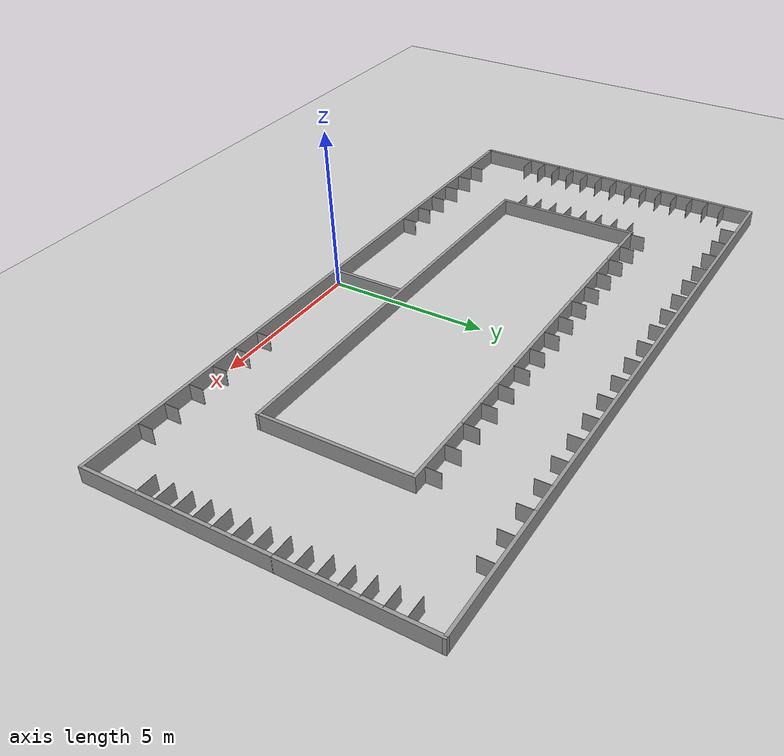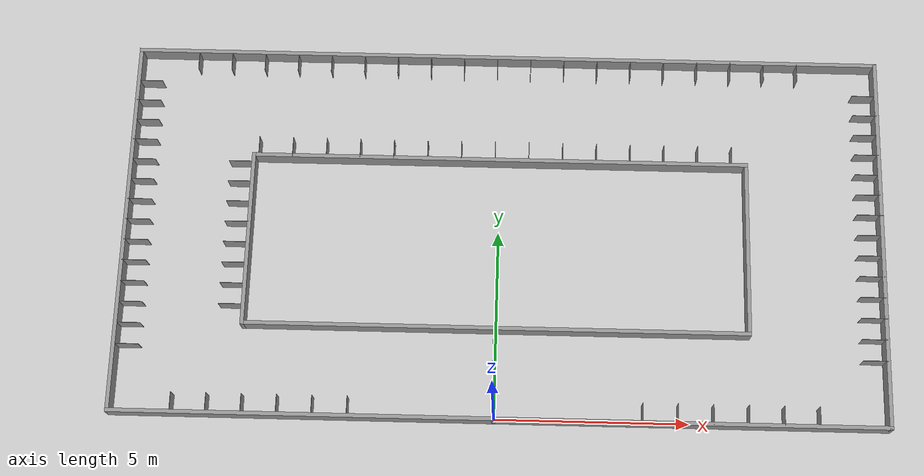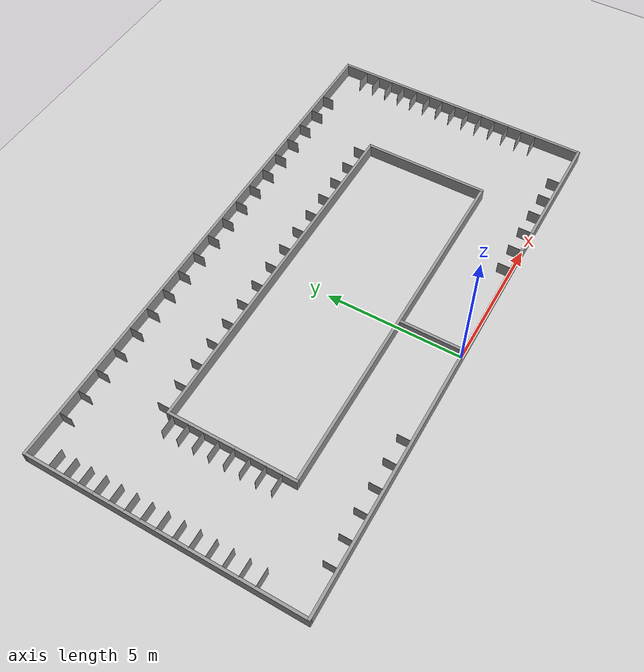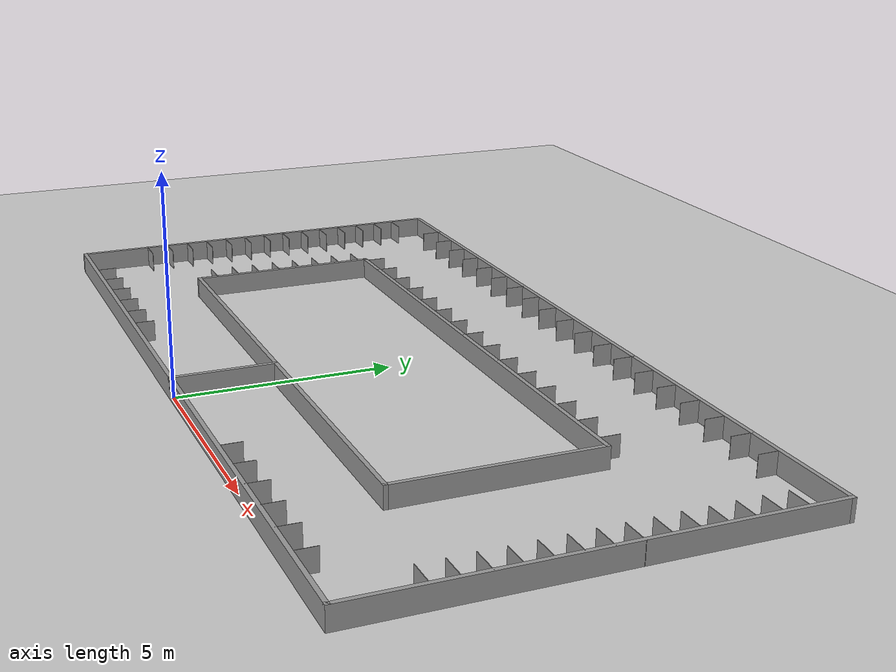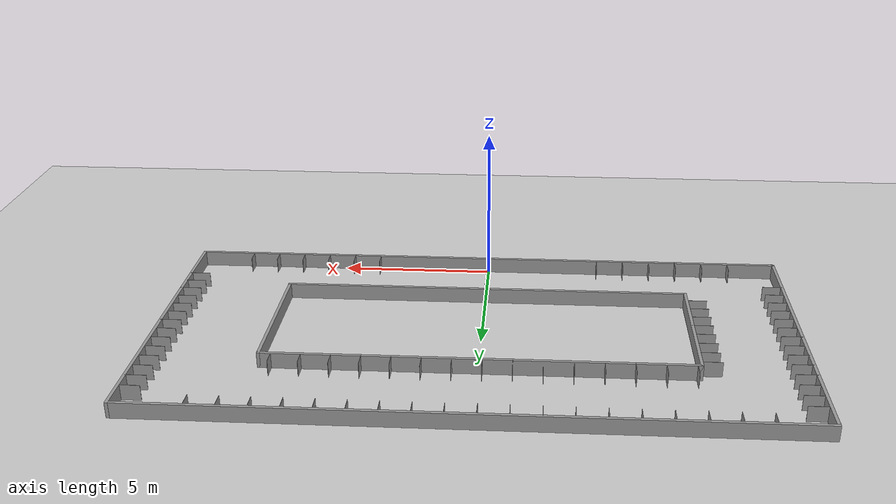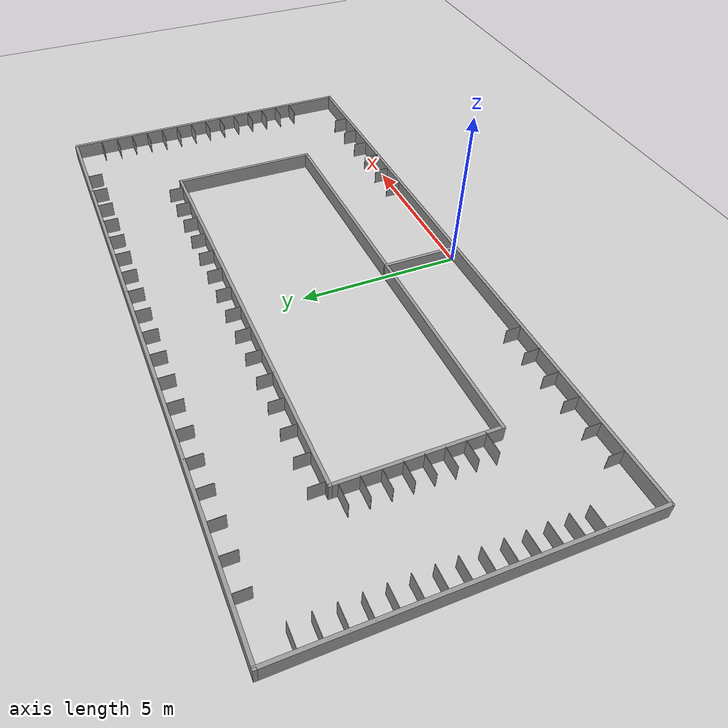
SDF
<sdf version="1.6">
 <world name="default">
  <light name="sun" type="directional">
   <pose>0 0 10 0 -0 0</pose>
   <diffuse>0.8 0.8 0.8 1</diffuse>
   <specular>0.2 0.2 0.2 1</specular>
   <attenuation>
    <range>1000</range>
    <constant>0.9</constant>
    <linear>0.01</linear>
    <quadratic>0.001</quadratic>
   </attenuation>
   <direction>-0.5 0.1 -0.9</direction>
  </light>
  <model name="ground_plane">
   <static>1</static>
   <link name="link">
    <collision name="collision">
     <geometry><plane><normal>0 0 1</normal><size>100 100</size></plane></geometry>
     <surface><friction><ode><mu>100</mu><mu2>50</mu2></ode></friction></surface>
    </collision>
    <visual name="visual">
     <cast_shadows>0</cast_shadows>
     <geometry><plane><normal>0 0 1</normal><size>100 100</size></plane></geometry>
     <material>
      <script><uri>file://media/materials/scripts/gazebo.material</uri><name>Gazebo/Grey</name></script>
     </material>
    </visual>
   </link>
  </model>
  <gravity>0 0 -9.8</gravity>
  <magnetic_field>6e-06 2.3e-05 -4.2e-05</magnetic_field>
  <atmosphere type="adiabatic"/>
  <physics name="default_physics" default="0" type="ode">
   <max_step_size>0.001</max_step_size>
   <real_time_factor>1</real_time_factor>
   <real_time_update_rate>1000</real_time_update_rate>
  </physics>
  <scene><ambient>0.4 0.4 0.4 1</ambient><background>0.7 0.7 0.7 1</background><shadows>1</shadows></scene>
  <spherical_coordinates>
   <surface_model>EARTH_WGS84</surface_model>
   <latitude_deg>0</latitude_deg>
   <longitude_deg>0</longitude_deg>
   <elevation>0</elevation>
   <heading_deg>0</heading_deg>
  </spherical_coordinates>
  <model name="parking_space_half_build">
   <pose>0.130257 4.90018 -0 0 -0 0</pose>
   <link name="Wall_0">
    <collision name="Wall_0_Collision">
     <geometry><box><size>20 0.1 0.5</size></box></geometry>
     <pose>0 0 0.25 0 -0 0</pose>
    </collision>
    <visual name="Wall_0_Visual">
     <pose>0 0 0.25 0 -0 0</pose>
     <geometry><box><size>20 0.1 0.5</size></box></geometry>
     <material>
      <script><uri>file://media/materials/scripts/gazebo.material</uri><name>Gazebo/Grey</name></script>
      <ambient>1 1 1 1</ambient>
     </material>
     <meta><layer>0</layer></meta>
    </visual>
    <pose>-0.0005 -4.95 0 0 -0 0</pose>
   </link>
   <link name="Wall_10">
    <collision name="Wall_10_Collision">
     <geometry><box><size>0.46 0.01 0.5</size></box></geometry>
     <pose>0 0 0.25 0 -0 0</pose>
    </collision>
    <visual name="Wall_10_Visual">
     <pose>0 0 0.25 0 -0 0</pose>
     <geometry><box><size>0.46 0.01 0.5</size></box></geometry>
     <material>
      <script><uri>file://media/materials/scripts/gazebo.material</uri><name>Gazebo/Grey</name></script>
      <ambient>1 1 1 1</ambient>
     </material>
     <meta><layer>0</layer></meta>
    </visual>
    <pose>-6.5665 4.675 0 0 -0 -1.5708</pose>
   </link>
   <link name="Wall_100">
    <collision name="Wall_100_Collision">
     <geometry><box><size>0.654 0.01 0.5</size></box></geometry>
     <pose>0 0 0.25 0 -0 0</pose>
    </collision>
    <visual name="Wall_100_Visual">
     <pose>0 0 0.25 0 -0 0</pose>
     <geometry><box><size>0.654 0.01 0.5</size></box></geometry>
     <material>
      <script><uri>file://media/materials/scripts/gazebo.material</uri><name>Gazebo/Grey</name></script>
      <ambient>1 1 1 1</ambient>
     </material>
     <meta><layer>0</layer></meta>
    </visual>
    <pose>-7.0065 -0.426 0 0 -0 3.14159</pose>
   </link>
   <link name="Wall_102">
    <collision name="Wall_102_Collision">
     <geometry><box><size>0.644 0.01 0.5</size></box></geometry>
     <pose>0 0 0.25 0 -0 0</pose>
    </collision>
    <visual name="Wall_102_Visual">
     <pose>0 0 0.25 0 -0 0</pose>
     <geometry><box><size>0.644 0.01 0.5</size></box></geometry>
     <material>
      <script><uri>file://media/materials/scripts/gazebo.material</uri><name>Gazebo/Grey</name></script>
      <ambient>1 1 1 1</ambient>
     </material>
     <meta><layer>0</layer></meta>
    </visual>
    <pose>-7.0115 -0.986 0 0 -0 3.14159</pose>
   </link>
   <link name="Wall_104">
    <collision name="Wall_104_Collision">
     <geometry><box><size>0.638 0.01 0.5</size></box></geometry>
     <pose>0 0 0.25 0 -0 0</pose>
    </collision>
    <visual name="Wall_104_Visual">
     <pose>0 0 0.25 0 -0 0</pose>
     <geometry><box><size>0.638 0.01 0.5</size></box></geometry>
     <material>
      <script><uri>file://media/materials/scripts/gazebo.material</uri><name>Gazebo/Grey</name></script>
      <ambient>1 1 1 1</ambient>
     </material>
     <meta><layer>0</layer></meta>
    </visual>
    <pose>-7.0145 -1.546 0 0 -0 3.14159</pose>
   </link>
   <link name="Wall_106">
    <collision name="Wall_106_Collision">
     <geometry><box><size>0.654 0.01 0.5</size></box></geometry>
     <pose>0 0 0.25 0 -0 0</pose>
    </collision>
    <visual name="Wall_106_Visual">
     <pose>0 0 0.25 0 -0 0</pose>
     <geometry><box><size>0.654 0.01 0.5</size></box></geometry>
     <material>
      <script><uri>file://media/materials/scripts/gazebo.material</uri><name>Gazebo/Grey</name></script>
      <ambient>1 1 1 1</ambient>
     </material>
     <meta><layer>0</layer></meta>
    </visual>
    <pose>-7.0065 -2.106 0 0 -0 3.14159</pose>
   </link>
   <link name="Wall_109">
    <collision name="Wall_109_Collision">
     <geometry><box><size>0.46 0.01 0.5</size></box></geometry>
     <pose>0 0 0.25 0 -0 0</pose>
    </collision>
    <visual name="Wall_109_Visual">
     <pose>0 0 0.25 0 -0 0</pose>
     <geometry><box><size>0.46 0.01 0.5</size></box></geometry>
     <material>
      <script><uri>file://media/materials/scripts/gazebo.material</uri><name>Gazebo/Grey</name></script>
      <ambient>1 1 1 1</ambient>
     </material>
     <meta><layer>0</layer></meta>
    </visual>
    <pose>-6.5665 2.285 0 0 -0 1.5708</pose>
   </link>
   <link name="Wall_14">
    <collision name="Wall_14_Collision">
     <geometry><box><size>4.7 0.1 0.5</size></box></geometry>
     <pose>0 0 0.25 0 -0 0</pose>
    </collision>
    <visual name="Wall_14_Visual">
     <pose>0 0 0.25 0 -0 0</pose>
     <geometry><box><size>4.7 0.1 0.5</size></box></geometry>
     <material>
      <script><uri>file://media/materials/scripts/gazebo.material</uri><name>Gazebo/Grey</name></script>
      <ambient>1 1 1 1</ambient>
     </material>
     <meta><layer>0</layer></meta>
    </visual>
    <pose>-6.6885 -0.29 0 0 -0 -1.5708</pose>
   </link>
   <link name="Wall_144">
    <collision name="Wall_144_Collision">
     <geometry><box><size>0.544 0.01 0.5</size></box></geometry>
     <pose>0 0 0.25 0 -0 0</pose>
    </collision>
    <visual name="Wall_144_Visual">
     <pose>0 0 0.25 0 -0 0</pose>
     <geometry><box><size>0.544 0.01 0.5</size></box></geometry>
     <material>
      <script><uri>file://media/materials/scripts/gazebo.material</uri><name>Gazebo/Grey</name></script>
      <ambient>1 1 1 1</ambient>
     </material>
     <meta><layer>0</layer></meta>
    </visual>
    <pose>-5.6665 2.243 0 0 -0 1.5708</pose>
   </link>
   <link name="Wall_146">
    <collision name="Wall_146_Collision">
     <geometry><box><size>0.511 0.01 0.5</size></box></geometry>
     <pose>0 0 0.25 0 -0 0</pose>
    </collision>
    <visual name="Wall_146_Visual">
     <pose>0 0 0.25 0 -0 0</pose>
     <geometry><box><size>0.511 0.01 0.5</size></box></geometry>
     <material>
      <script><uri>file://media/materials/scripts/gazebo.material</uri><name>Gazebo/Grey</name></script>
      <ambient>1 1 1 1</ambient>
     </material>
     <meta><layer>0</layer></meta>
    </visual>
    <pose>-4.7665 2.2595 0 0 -0 1.5708</pose>
   </link>
   <link name="Wall_148">
    <collision name="Wall_148_Collision">
     <geometry><box><size>0.517 0.01 0.5</size></box></geometry>
     <pose>0 0 0.25 0 -0 0</pose>
    </collision>
    <visual name="Wall_148_Visual">
     <pose>0 0 0.25 0 -0 0</pose>
     <geometry><box><size>0.517 0.01 0.5</size></box></geometry>
     <material>
      <script><uri>file://media/materials/scripts/gazebo.material</uri><name>Gazebo/Grey</name></script>
      <ambient>1 1 1 1</ambient>
     </material>
     <meta><layer>0</layer></meta>
    </visual>
    <pose>-3.8665 2.2565 0 0 -0 1.5708</pose>
   </link>
   <link name="Wall_150">
    <collision name="Wall_150_Collision">
     <geometry><box><size>0.511 0.01 0.5</size></box></geometry>
     <pose>0 0 0.25 0 -0 0</pose>
    </collision>
    <visual name="Wall_150_Visual">
     <pose>0 0 0.25 0 -0 0</pose>
     <geometry><box><size>0.511 0.01 0.5</size></box></geometry>
     <material>
      <script><uri>file://media/materials/scripts/gazebo.material</uri><name>Gazebo/Grey</name></script>
      <ambient>1 1 1 1</ambient>
     </material>
     <meta><layer>0</layer></meta>
    </visual>
    <pose>-2.9665 2.2595 0 0 -0 1.5708</pose>
   </link>
   <link name="Wall_152">
    <collision name="Wall_152_Collision">
     <geometry><box><size>0.504 0.01 0.5</size></box></geometry>
     <pose>0 0 0.25 0 -0 0</pose>
    </collision>
    <visual name="Wall_152_Visual">
     <pose>0 0 0.25 0 -0 0</pose>
     <geometry><box><size>0.504 0.01 0.5</size></box></geometry>
     <material>
      <script><uri>file://media/materials/scripts/gazebo.material</uri><name>Gazebo/Grey</name></script>
      <ambient>1 1 1 1</ambient>
     </material>
     <meta><layer>0</layer></meta>
    </visual>
    <pose>-2.0665 2.263 0 0 -0 1.5708</pose>
   </link>
   <link name="Wall_154">
    <collision name="Wall_154_Collision">
     <geometry><box><size>0.497 0.01 0.5</size></box></geometry>
     <pose>0 0 0.25 0 -0 0</pose>
    </collision>
    <visual name="Wall_154_Visual">
     <pose>0 0 0.25 0 -0 0</pose>
     <geometry><box><size>0.497 0.01 0.5</size></box></geometry>
     <material>
      <script><uri>file://media/materials/scripts/gazebo.material</uri><name>Gazebo/Grey</name></script>
      <ambient>1 1 1 1</ambient>
     </material>
     <meta><layer>0</layer></meta>
    </visual>
    <pose>-1.1665 2.2665 0 0 -0 1.5708</pose>
   </link>
   <link name="Wall_156">
    <collision name="Wall_156_Collision">
     <geometry><box><size>0.501 0.01 0.5</size></box></geometry>
     <pose>0 0 0.25 0 -0 0</pose>
    </collision>
    <visual name="Wall_156_Visual">
     <pose>0 0 0.25 0 -0 0</pose>
     <geometry><box><size>0.501 0.01 0.5</size></box></geometry>
     <material>
      <script><uri>file://media/materials/scripts/gazebo.material</uri><name>Gazebo/Grey</name></script>
      <ambient>1 1 1 1</ambient>
     </material>
     <meta><layer>0</layer></meta>
    </visual>
    <pose>-0.2665 2.2645 0 0 -0 1.5708</pose>
   </link>
   <link name="Wall_158">
    <collision name="Wall_158_Collision">
     <geometry><box><size>0.484 0.01 0.5</size></box></geometry>
     <pose>0 0 0.25 0 -0 0</pose>
    </collision>
    <visual name="Wall_158_Visual">
     <pose>0 0 0.25 0 -0 0</pose>
     <geometry><box><size>0.484 0.01 0.5</size></box></geometry>
     <material>
      <script><uri>file://media/materials/scripts/gazebo.material</uri><name>Gazebo/Grey</name></script>
      <ambient>1 1 1 1</ambient>
     </material>
     <meta><layer>0</layer></meta>
    </visual>
    <pose>0.6335 2.273 0 0 -0 1.5708</pose>
   </link>
   <link name="Wall_16">
    <collision name="Wall_16_Collision">
     <geometry><box><size>13.2 0.1 0.5</size></box></geometry>
     <pose>0 0 0.25 0 -0 0</pose>
    </collision>
    <visual name="Wall_16_Visual">
     <pose>0 0 0.25 0 -0 0</pose>
     <geometry><box><size>13.2 0.1 0.5</size></box></geometry>
     <material>
      <script><uri>file://media/materials/scripts/gazebo.material</uri><name>Gazebo/Grey</name></script>
      <ambient>1 1 1 1</ambient>
     </material>
     <meta><layer>0</layer></meta>
    </visual>
    <pose>-0.1385 2.01 0 0 -0 0</pose>
   </link>
   <link name="Wall_160">
    <collision name="Wall_160_Collision">
     <geometry><box><size>0.497 0.01 0.5</size></box></geometry>
     <pose>0 0 0.25 0 -0 0</pose>
    </collision>
    <visual name="Wall_160_Visual">
     <pose>0 0 0.25 0 -0 0</pose>
     <geometry><box><size>0.497 0.01 0.5</size></box></geometry>
     <material>
      <script><uri>file://media/materials/scripts/gazebo.material</uri><name>Gazebo/Grey</name></script>
      <ambient>1 1 1 1</ambient>
     </material>
     <meta><layer>0</layer></meta>
    </visual>
    <pose>1.5335 2.2665 0 0 -0 1.5708</pose>
   </link>
   <link name="Wall_162">
    <collision name="Wall_162_Collision">
     <geometry><box><size>0.517011 0.01 0.5</size></box></geometry>
     <pose>0 0 0.25 0 -0 0</pose>
    </collision>
    <visual name="Wall_162_Visual">
     <pose>0 0 0.25 0 -0 0</pose>
     <geometry><box><size>0.517011 0.01 0.5</size></box></geometry>
     <material>
      <script><uri>file://media/materials/scripts/gazebo.material</uri><name>Gazebo/Grey</name></script>
      <ambient>1 1 1 1</ambient>
     </material>
     <meta><layer>0</layer></meta>
    </visual>
    <pose>2.4335 2.2565 0 0 -0 1.5708</pose>
   </link>
   <link name="Wall_164">
    <collision name="Wall_164_Collision">
     <geometry><box><size>0.53 0.01 0.5</size></box></geometry>
     <pose>0 0 0.25 0 -0 0</pose>
    </collision>
    <visual name="Wall_164_Visual">
     <pose>0 0 0.25 0 -0 0</pose>
     <geometry><box><size>0.53 0.01 0.5</size></box></geometry>
     <material>
      <script><uri>file://media/materials/scripts/gazebo.material</uri><name>Gazebo/Grey</name></script>
      <ambient>1 1 1 1</ambient>
     </material>
     <meta><layer>0</layer></meta>
    </visual>
    <pose>3.3335 2.25 0 0 -0 1.5708</pose>
   </link>
   <link name="Wall_166">
    <collision name="Wall_166_Collision">
     <geometry><box><size>0.524 0.01 0.5</size></box></geometry>
     <pose>0 0 0.25 0 -0 0</pose>
    </collision>
    <visual name="Wall_166_Visual">
     <pose>0 0 0.25 0 -0 0</pose>
     <geometry><box><size>0.524 0.01 0.5</size></box></geometry>
     <material>
      <script><uri>file://media/materials/scripts/gazebo.material</uri><name>Gazebo/Grey</name></script>
      <ambient>1 1 1 1</ambient>
     </material>
     <meta><layer>0</layer></meta>
    </visual>
    <pose>4.2335 2.253 0 0 -0 1.5708</pose>
   </link>
   <link name="Wall_168">
    <collision name="Wall_168_Collision">
     <geometry><box><size>0.53 0.01 0.5</size></box></geometry>
     <pose>0 0 0.25 0 -0 0</pose>
    </collision>
    <visual name="Wall_168_Visual">
     <pose>0 0 0.25 0 -0 0</pose>
     <geometry><box><size>0.53 0.01 0.5</size></box></geometry>
     <material>
      <script><uri>file://media/materials/scripts/gazebo.material</uri><name>Gazebo/Grey</name></script>
      <ambient>1 1 1 1</ambient>
     </material>
     <meta><layer>0</layer></meta>
    </visual>
    <pose>5.1335 2.25 0 0 -0 1.5708</pose>
   </link>
   <link name="Wall_17">
    <collision name="Wall_17_Collision">
     <geometry><box><size>4.7 0.1 0.5</size></box></geometry>
     <pose>0 0 0.25 0 -0 0</pose>
    </collision>
    <visual name="Wall_17_Visual">
     <pose>0 0 0.25 0 -0 0</pose>
     <geometry><box><size>4.7 0.1 0.5</size></box></geometry>
     <material>
      <script><uri>file://media/materials/scripts/gazebo.material</uri><name>Gazebo/Grey</name></script>
      <ambient>1 1 1 1</ambient>
     </material>
     <meta><layer>0</layer></meta>
    </visual>
    <pose>6.4115 -0.29 0 0 -0 -1.5708</pose>
   </link>
   <link name="Wall_170">
    <collision name="Wall_170_Collision">
     <geometry><box><size>0.491 0.01 0.5</size></box></geometry>
     <pose>0 0 0.25 0 -0 0</pose>
    </collision>
    <visual name="Wall_170_Visual">
     <pose>0 0 0.25 0 -0 0</pose>
     <geometry><box><size>0.491 0.01 0.5</size></box></geometry>
     <material>
      <script><uri>file://media/materials/scripts/gazebo.material</uri><name>Gazebo/Grey</name></script>
      <ambient>1 1 1 1</ambient>
     </material>
     <meta><layer>0</layer></meta>
    </visual>
    <pose>6.0335 2.2695 0 0 -0 1.5708</pose>
   </link>
   <link name="Wall_18">
    <collision name="Wall_18_Collision">
     <geometry><box><size>13.2 0.1 0.5</size></box></geometry>
     <pose>0 0 0.25 0 -0 0</pose>
    </collision>
    <visual name="Wall_18_Visual">
     <pose>0 0 0.25 0 -0 0</pose>
     <geometry><box><size>13.2 0.1 0.5</size></box></geometry>
     <material>
      <script><uri>file://media/materials/scripts/gazebo.material</uri><name>Gazebo/Grey</name></script>
      <ambient>1 1 1 1</ambient>
     </material>
     <meta><layer>0</layer></meta>
    </visual>
    <pose>-0.1385 -2.59 0 0 -0 3.14159</pose>
   </link>
   <link name="Wall_2">
    <collision name="Wall_2_Collision">
     <geometry><box><size>10 0.1 0.5</size></box></geometry>
     <pose>0 0 0.25 0 -0 0</pose>
    </collision>
    <visual name="Wall_2_Visual">
     <pose>0 0 0.25 0 -0 0</pose>
     <geometry><box><size>10 0.1 0.5</size></box></geometry>
     <material>
      <script><uri>file://media/materials/scripts/gazebo.material</uri><name>Gazebo/Grey</name></script>
      <ambient>1 1 1 1</ambient>
     </material>
     <meta><layer>0</layer></meta>
    </visual>
    <pose>9.9495 0 0 0 -0 1.5708</pose>
   </link>
   <link name="Wall_202">
    <collision name="Wall_202_Collision">
     <geometry><box><size>0.498 0.01 0.5</size></box></geometry>
     <pose>0 0 0.25 0 -0 0</pose>
    </collision>
    <visual name="Wall_202_Visual">
     <pose>0 0 0.25 0 -0 0</pose>
     <geometry><box><size>0.498 0.01 0.5</size></box></geometry>
     <material>
      <script><uri>file://media/materials/scripts/gazebo.material</uri><name>Gazebo/Grey</name></script>
      <ambient>1 1 1 1</ambient>
     </material>
     <meta><layer>0</layer></meta>
    </visual>
    <pose>-5.6665 4.694 0 0 -0 -1.5708</pose>
   </link>
   <link name="Wall_204">
    <collision name="Wall_204_Collision">
     <geometry><box><size>0.508 0.01 0.5</size></box></geometry>
     <pose>0 0 0.25 0 -0 0</pose>
    </collision>
    <visual name="Wall_204_Visual">
     <pose>0 0 0.25 0 -0 0</pose>
     <geometry><box><size>0.508 0.01 0.5</size></box></geometry>
     <material>
      <script><uri>file://media/materials/scripts/gazebo.material</uri><name>Gazebo/Grey</name></script>
      <ambient>1 1 1 1</ambient>
     </material>
     <meta><layer>0</layer></meta>
    </visual>
    <pose>-4.7665 4.699 0 0 -0 -1.5708</pose>
   </link>
   <link name="Wall_206">
    <collision name="Wall_206_Collision">
     <geometry><box><size>0.503 0.01 0.5</size></box></geometry>
     <pose>0 0 0.25 0 -0 0</pose>
    </collision>
    <visual name="Wall_206_Visual">
     <pose>0 0 0.25 0 -0 0</pose>
     <geometry><box><size>0.503 0.01 0.5</size></box></geometry>
     <material>
      <script><uri>file://media/materials/scripts/gazebo.material</uri><name>Gazebo/Grey</name></script>
      <ambient>1 1 1 1</ambient>
     </material>
     <meta><layer>0</layer></meta>
    </visual>
    <pose>-3.8665 4.6965 0 0 -0 -1.5708</pose>
   </link>
   <link name="Wall_208">
    <collision name="Wall_208_Collision">
     <geometry><box><size>0.503 0.01 0.5</size></box></geometry>
     <pose>0 0 0.25 0 -0 0</pose>
    </collision>
    <visual name="Wall_208_Visual">
     <pose>0 0 0.25 0 -0 0</pose>
     <geometry><box><size>0.503 0.01 0.5</size></box></geometry>
     <material>
      <script><uri>file://media/materials/scripts/gazebo.material</uri><name>Gazebo/Grey</name></script>
      <ambient>1 1 1 1</ambient>
     </material>
     <meta><layer>0</layer></meta>
    </visual>
    <pose>-2.9665 4.6965 0 0 -0 -1.5708</pose>
   </link>
   <link name="Wall_210">
    <collision name="Wall_210_Collision">
     <geometry><box><size>0.493 0.01 0.5</size></box></geometry>
     <pose>0 0 0.25 0 -0 0</pose>
    </collision>
    <visual name="Wall_210_Visual">
     <pose>0 0 0.25 0 -0 0</pose>
     <geometry><box><size>0.493 0.01 0.5</size></box></geometry>
     <material>
      <script><uri>file://media/materials/scripts/gazebo.material</uri><name>Gazebo/Grey</name></script>
      <ambient>1 1 1 1</ambient>
     </material>
     <meta><layer>0</layer></meta>
    </visual>
    <pose>-2.0665 4.6915 0 0 -0 -1.5708</pose>
   </link>
   <link name="Wall_212">
    <collision name="Wall_212_Collision">
     <geometry><box><size>0.498 0.01 0.5</size></box></geometry>
     <pose>0 0 0.25 0 -0 0</pose>
    </collision>
    <visual name="Wall_212_Visual">
     <pose>0 0 0.25 0 -0 0</pose>
     <geometry><box><size>0.498 0.01 0.5</size></box></geometry>
     <material>
      <script><uri>file://media/materials/scripts/gazebo.material</uri><name>Gazebo/Grey</name></script>
      <ambient>1 1 1 1</ambient>
     </material>
     <meta><layer>0</layer></meta>
    </visual>
    <pose>-1.1665 4.694 0 0 -0 -1.5708</pose>
   </link>
   <link name="Wall_214">
    <collision name="Wall_214_Collision">
     <geometry><box><size>0.503 0.01 0.5</size></box></geometry>
     <pose>0 0 0.25 0 -0 0</pose>
    </collision>
    <visual name="Wall_214_Visual">
     <pose>0 0 0.25 0 -0 0</pose>
     <geometry><box><size>0.503 0.01 0.5</size></box></geometry>
     <material>
      <script><uri>file://media/materials/scripts/gazebo.material</uri><name>Gazebo/Grey</name></script>
      <ambient>1 1 1 1</ambient>
     </material>
     <meta><layer>0</layer></meta>
    </visual>
    <pose>-0.2665 4.6965 0 0 -0 -1.5708</pose>
   </link>
   <link name="Wall_216">
    <collision name="Wall_216_Collision">
     <geometry><box><size>0.508 0.01 0.5</size></box></geometry>
     <pose>0 0 0.25 0 -0 0</pose>
    </collision>
    <visual name="Wall_216_Visual">
     <pose>0 0 0.25 0 -0 0</pose>
     <geometry><box><size>0.508 0.01 0.5</size></box></geometry>
     <material>
      <script><uri>file://media/materials/scripts/gazebo.material</uri><name>Gazebo/Grey</name></script>
      <ambient>1 1 1 1</ambient>
     </material>
     <meta><layer>0</layer></meta>
    </visual>
    <pose>0.6335 4.699 0 0 -0 -1.5708</pose>
   </link>
   <link name="Wall_218">
    <collision name="Wall_218_Collision">
     <geometry><box><size>0.518 0.01 0.5</size></box></geometry>
     <pose>0 0 0.25 0 -0 0</pose>
    </collision>
    <visual name="Wall_218_Visual">
     <pose>0 0 0.25 0 -0 0</pose>
     <geometry><box><size>0.518 0.01 0.5</size></box></geometry>
     <material>
      <script><uri>file://media/materials/scripts/gazebo.material</uri><name>Gazebo/Grey</name></script>
      <ambient>1 1 1 1</ambient>
     </material>
     <meta><layer>0</layer></meta>
    </visual>
    <pose>1.5335 4.704 0 0 -0 -1.5708</pose>
   </link>
   <link name="Wall_221">
    <collision name="Wall_221_Collision">
     <geometry><box><size>0.508 0.01 0.5</size></box></geometry>
     <pose>0 0 0.25 0 -0 0</pose>
    </collision>
    <visual name="Wall_221_Visual">
     <pose>0 0 0.25 0 -0 0</pose>
     <geometry><box><size>0.508 0.01 0.5</size></box></geometry>
     <material>
      <script><uri>file://media/materials/scripts/gazebo.material</uri><name>Gazebo/Grey</name></script>
      <ambient>1 1 1 1</ambient>
     </material>
     <meta><layer>0</layer></meta>
    </visual>
    <pose>2.4335 4.699 0 0 -0 -1.5708</pose>
   </link>
   <link name="Wall_223">
    <collision name="Wall_223_Collision">
     <geometry><box><size>0.523 0.01 0.5</size></box></geometry>
     <pose>0 0 0.25 0 -0 0</pose>
    </collision>
    <visual name="Wall_223_Visual">
     <pose>0 0 0.25 0 -0 0</pose>
     <geometry><box><size>0.523 0.01 0.5</size></box></geometry>
     <material>
      <script><uri>file://media/materials/scripts/gazebo.material</uri><name>Gazebo/Grey</name></script>
      <ambient>1 1 1 1</ambient>
     </material>
     <meta><layer>0</layer></meta>
    </visual>
    <pose>3.3335 4.7065 0 0 -0 -1.5708</pose>
   </link>
   <link name="Wall_225">
    <collision name="Wall_225_Collision">
     <geometry><box><size>0.523 0.01 0.5</size></box></geometry>
     <pose>0 0 0.25 0 -0 0</pose>
    </collision>
    <visual name="Wall_225_Visual">
     <pose>0 0 0.25 0 -0 0</pose>
     <geometry><box><size>0.523 0.01 0.5</size></box></geometry>
     <material>
      <script><uri>file://media/materials/scripts/gazebo.material</uri><name>Gazebo/Grey</name></script>
      <ambient>1 1 1 1</ambient>
     </material>
     <meta><layer>0</layer></meta>
    </visual>
    <pose>4.2335 4.7065 0 0 -0 -1.5708</pose>
   </link>
   <link name="Wall_227">
    <collision name="Wall_227_Collision">
     <geometry><box><size>0.508 0.01 0.5</size></box></geometry>
     <pose>0 0 0.25 0 -0 0</pose>
    </collision>
    <visual name="Wall_227_Visual">
     <pose>0 0 0.25 0 -0 0</pose>
     <geometry><box><size>0.508 0.01 0.5</size></box></geometry>
     <material>
      <script><uri>file://media/materials/scripts/gazebo.material</uri><name>Gazebo/Grey</name></script>
      <ambient>1 1 1 1</ambient>
     </material>
     <meta><layer>0</layer></meta>
    </visual>
    <pose>5.1335 4.699 0 0 -0 -1.5708</pose>
   </link>
   <link name="Wall_229">
    <collision name="Wall_229_Collision">
     <geometry><box><size>0.523 0.01 0.5</size></box></geometry>
     <pose>0 0 0.25 0 -0 0</pose>
    </collision>
    <visual name="Wall_229_Visual">
     <pose>0 0 0.25 0 -0 0</pose>
     <geometry><box><size>0.523 0.01 0.5</size></box></geometry>
     <material>
      <script><uri>file://media/materials/scripts/gazebo.material</uri><name>Gazebo/Grey</name></script>
      <ambient>1 1 1 1</ambient>
     </material>
     <meta><layer>0</layer></meta>
    </visual>
    <pose>6.0335 4.7065 0 0 -0 -1.5708</pose>
   </link>
   <link name="Wall_233">
    <collision name="Wall_233_Collision">
     <geometry><box><size>0.519 0.01 0.5</size></box></geometry>
     <pose>0 0 0.25 0 -0 0</pose>
    </collision>
    <visual name="Wall_233_Visual">
     <pose>0 0 0.25 0 -0 0</pose>
     <geometry><box><size>0.519 0.01 0.5</size></box></geometry>
     <material>
      <script><uri>file://media/materials/scripts/gazebo.material</uri><name>Gazebo/Grey</name></script>
      <ambient>1 1 1 1</ambient>
     </material>
     <meta><layer>0</layer></meta>
    </visual>
    <pose>6.9335 4.7045 0 0 -0 -1.5708</pose>
   </link>
   <link name="Wall_237">
    <collision name="Wall_237_Collision">
     <geometry><box><size>0.502 0.01 0.5</size></box></geometry>
     <pose>0 0 0.25 0 -0 0</pose>
    </collision>
    <visual name="Wall_237_Visual">
     <pose>0 0 0.25 0 -0 0</pose>
     <geometry><box><size>0.502 0.01 0.5</size></box></geometry>
     <material>
      <script><uri>file://media/materials/scripts/gazebo.material</uri><name>Gazebo/Grey</name></script>
      <ambient>1 1 1 1</ambient>
     </material>
     <meta><layer>0</layer></meta>
    </visual>
    <pose>7.8335 4.696 0 0 -0 -1.5708</pose>
   </link>
   <link name="Wall_243">
    <collision name="Wall_243_Collision">
     <geometry><box><size>0.51 0.01 0.5</size></box></geometry>
     <pose>0 0 0.25 0 -0 0</pose>
    </collision>
    <visual name="Wall_243_Visual">
     <pose>0 0 0.25 0 -0 0</pose>
     <geometry><box><size>0.51 0.01 0.5</size></box></geometry>
     <material>
      <script><uri>file://media/materials/scripts/gazebo.material</uri><name>Gazebo/Grey</name></script>
      <ambient>1 1 1 1</ambient>
     </material>
     <meta><layer>0</layer></meta>
    </visual>
    <pose>-7.4665 4.7 0 0 -0 -1.5708</pose>
   </link>
   <link name="Wall_245">
    <collision name="Wall_245_Collision">
     <geometry><box><size>0.515 0.01 0.5</size></box></geometry>
     <pose>0 0 0.25 0 -0 0</pose>
    </collision>
    <visual name="Wall_245_Visual">
     <pose>0 0 0.25 0 -0 0</pose>
     <geometry><box><size>0.515 0.01 0.5</size></box></geometry>
     <material>
      <script><uri>file://media/materials/scripts/gazebo.material</uri><name>Gazebo/Grey</name></script>
      <ambient>1 1 1 1</ambient>
     </material>
     <meta><layer>0</layer></meta>
    </visual>
    <pose>-8.3665 4.7025 0 0 -0 -1.5708</pose>
   </link>
   <link name="Wall_248">
    <collision name="Wall_248_Collision">
     <geometry><box><size>2.46 0.1 0.5</size></box></geometry>
     <pose>0 0 0.25 0 -0 0</pose>
    </collision>
    <visual name="Wall_248_Visual">
     <pose>0 0 0.25 0 -0 0</pose>
     <geometry><box><size>2.46 0.1 0.5</size></box></geometry>
     <material>
      <script><uri>file://media/materials/scripts/gazebo.material</uri><name>Gazebo/Grey</name></script>
      <ambient>1 1 1 1</ambient>
     </material>
     <meta><layer>0</layer></meta>
    </visual>
    <pose>-0.1385 -3.77 0 0 -0 -1.5708</pose>
   </link>
   <link name="Wall_250">
    <collision name="Wall_250_Collision">
     <geometry><box><size>0.46 0.01 0.5</size></box></geometry>
     <pose>0 0 0.25 0 -0 0</pose>
    </collision>
    <visual name="Wall_250_Visual">
     <pose>0 0 0.25 0 -0 0</pose>
     <geometry><box><size>0.46 0.01 0.5</size></box></geometry>
     <material>
      <script><uri>file://media/materials/scripts/gazebo.material</uri><name>Gazebo/Grey</name></script>
      <ambient>1 1 1 1</ambient>
     </material>
     <meta><layer>0</layer></meta>
    </visual>
    <pose>-8.3665 -4.675 0 0 -0 1.5708</pose>
   </link>
   <link name="Wall_262">
    <collision name="Wall_262_Collision">
     <geometry><box><size>0.478 0.01 0.5</size></box></geometry>
     <pose>0 0 0.25 0 -0 0</pose>
    </collision>
    <visual name="Wall_262_Visual">
     <pose>0 0 0.25 0 -0 0</pose>
     <geometry><box><size>0.478 0.01 0.5</size></box></geometry>
     <material>
      <script><uri>file://media/materials/scripts/gazebo.material</uri><name>Gazebo/Grey</name></script>
      <ambient>1 1 1 1</ambient>
     </material>
     <meta><layer>0</layer></meta>
    </visual>
    <pose>-7.4665 -4.684 0 0 -0 1.5708</pose>
   </link>
   <link name="Wall_264">
    <collision name="Wall_264_Collision">
     <geometry><box><size>0.507 0.01 0.5</size></box></geometry>
     <pose>0 0 0.25 0 -0 0</pose>
    </collision>
    <visual name="Wall_264_Visual">
     <pose>0 0 0.25 0 -0 0</pose>
     <geometry><box><size>0.507 0.01 0.5</size></box></geometry>
     <material>
      <script><uri>file://media/materials/scripts/gazebo.material</uri><name>Gazebo/Grey</name></script>
      <ambient>1 1 1 1</ambient>
     </material>
     <meta><layer>0</layer></meta>
    </visual>
    <pose>-6.5665 -4.6985 0 0 -0 1.5708</pose>
   </link>
   <link name="Wall_266">
    <collision name="Wall_266_Collision">
     <geometry><box><size>0.507 0.01 0.5</size></box></geometry>
     <pose>0 0 0.25 0 -0 0</pose>
    </collision>
    <visual name="Wall_266_Visual">
     <pose>0 0 0.25 0 -0 0</pose>
     <geometry><box><size>0.507 0.01 0.5</size></box></geometry>
     <material>
      <script><uri>file://media/materials/scripts/gazebo.material</uri><name>Gazebo/Grey</name></script>
      <ambient>1 1 1 1</ambient>
     </material>
     <meta><layer>0</layer></meta>
    </visual>
    <pose>-5.6665 -4.6985 0 0 -0 1.5708</pose>
   </link>
   <link name="Wall_268">
    <collision name="Wall_268_Collision">
     <geometry><box><size>0.497 0.01 0.5</size></box></geometry>
     <pose>0 0 0.25 0 -0 0</pose>
    </collision>
    <visual name="Wall_268_Visual">
     <pose>0 0 0.25 0 -0 0</pose>
     <geometry><box><size>0.497 0.01 0.5</size></box></geometry>
     <material>
      <script><uri>file://media/materials/scripts/gazebo.material</uri><name>Gazebo/Grey</name></script>
      <ambient>1 1 1 1</ambient>
     </material>
     <meta><layer>0</layer></meta>
    </visual>
    <pose>-4.7665 -4.6935 0 0 -0 1.5708</pose>
   </link>
   <link name="Wall_270">
    <collision name="Wall_270_Collision">
     <geometry><box><size>0.487 0.01 0.5</size></box></geometry>
     <pose>0 0 0.25 0 -0 0</pose>
    </collision>
    <visual name="Wall_270_Visual">
     <pose>0 0 0.25 0 -0 0</pose>
     <geometry><box><size>0.487 0.01 0.5</size></box></geometry>
     <material>
      <script><uri>file://media/materials/scripts/gazebo.material</uri><name>Gazebo/Grey</name></script>
      <ambient>1 1 1 1</ambient>
     </material>
     <meta><layer>0</layer></meta>
    </visual>
    <pose>-3.8665 -4.6885 0 0 -0 1.5708</pose>
   </link>
   <link name="Wall_272">
    <collision name="Wall_272_Collision">
     <geometry><box><size>0.6 0.01 0.5</size></box></geometry>
     <pose>0 0 0.25 0 -0 0</pose>
    </collision>
    <visual name="Wall_272_Visual">
     <pose>0 0 0.25 0 -0 0</pose>
     <geometry><box><size>0.6 0.01 0.5</size></box></geometry>
     <material>
      <script><uri>file://media/materials/scripts/gazebo.material</uri><name>Gazebo/Grey</name></script>
      <ambient>1 1 1 1</ambient>
     </material>
     <meta><layer>0</layer></meta>
    </visual>
    <pose>9.6045 4.054 0 0 -0 3.14159</pose>
   </link>
   <link name="Wall_3">
    <collision name="Wall_3_Collision">
     <geometry><box><size>20 0.1 0.5</size></box></geometry>
     <pose>0 0 0.25 0 -0 0</pose>
    </collision>
    <visual name="Wall_3_Visual">
     <pose>0 0 0.25 0 -0 0</pose>
     <geometry><box><size>20 0.1 0.5</size></box></geometry>
     <material>
      <script><uri>file://media/materials/scripts/gazebo.material</uri><name>Gazebo/Grey</name></script>
      <ambient>1 1 1 1</ambient>
     </material>
     <meta><layer>0</layer></meta>
    </visual>
    <pose>-0.0005 4.95 0 0 -0 3.14159</pose>
   </link>
   <link name="Wall_301">
    <collision name="Wall_301_Collision">
     <geometry><box><size>0.65 0.01 0.5</size></box></geometry>
     <pose>0 0 0.25 0 -0 0</pose>
    </collision>
    <visual name="Wall_301_Visual">
     <pose>0 0 0.25 0 -0 0</pose>
     <geometry><box><size>0.65 0.01 0.5</size></box></geometry>
     <material>
      <script><uri>file://media/materials/scripts/gazebo.material</uri><name>Gazebo/Grey</name></script>
      <ambient>1 1 1 1</ambient>
     </material>
     <meta><layer>0</layer></meta>
    </visual>
    <pose>9.6295 3.494 0 0 -0 3.14159</pose>
   </link>
   <link name="Wall_303">
    <collision name="Wall_303_Collision">
     <geometry><box><size>0.664 0.01 0.5</size></box></geometry>
     <pose>0 0 0.25 0 -0 0</pose>
    </collision>
    <visual name="Wall_303_Visual">
     <pose>0 0 0.25 0 -0 0</pose>
     <geometry><box><size>0.664 0.01 0.5</size></box></geometry>
     <material>
      <script><uri>file://media/materials/scripts/gazebo.material</uri><name>Gazebo/Grey</name></script>
      <ambient>1 1 1 1</ambient>
     </material>
     <meta><layer>0</layer></meta>
    </visual>
    <pose>9.6365 2.934 0 0 -0 3.14159</pose>
   </link>
   <link name="Wall_305">
    <collision name="Wall_305_Collision">
     <geometry><box><size>0.643 0.01 0.5</size></box></geometry>
     <pose>0 0 0.25 0 -0 0</pose>
    </collision>
    <visual name="Wall_305_Visual">
     <pose>0 0 0.25 0 -0 0</pose>
     <geometry><box><size>0.643 0.01 0.5</size></box></geometry>
     <material>
      <script><uri>file://media/materials/scripts/gazebo.material</uri><name>Gazebo/Grey</name></script>
      <ambient>1 1 1 1</ambient>
     </material>
     <meta><layer>0</layer></meta>
    </visual>
    <pose>9.626 2.374 0 0 -0 3.14159</pose>
   </link>
   <link name="Wall_307">
    <collision name="Wall_307_Collision">
     <geometry><box><size>0.639428 0.01 0.5</size></box></geometry>
     <pose>0 0 0.25 0 -0 0</pose>
    </collision>
    <visual name="Wall_307_Visual">
     <pose>0 0 0.25 0 -0 0</pose>
     <geometry><box><size>0.639428 0.01 0.5</size></box></geometry>
     <material>
      <script><uri>file://media/materials/scripts/gazebo.material</uri><name>Gazebo/Grey</name></script>
      <ambient>1 1 1 1</ambient>
     </material>
     <meta><layer>0</layer></meta>
    </visual>
    <pose>9.61779 1.814 0 0 -0 3.14159</pose>
   </link>
   <link name="Wall_309">
    <collision name="Wall_309_Collision">
     <geometry><box><size>0.687 0.01 0.5</size></box></geometry>
     <pose>0 0 0.25 0 -0 0</pose>
    </collision>
    <visual name="Wall_309_Visual">
     <pose>0 0 0.25 0 -0 0</pose>
     <geometry><box><size>0.687 0.01 0.5</size></box></geometry>
     <material>
      <script><uri>file://media/materials/scripts/gazebo.material</uri><name>Gazebo/Grey</name></script>
      <ambient>1 1 1 1</ambient>
     </material>
     <meta><layer>0</layer></meta>
    </visual>
    <pose>9.648 1.254 0 0 -0 -3.14159</pose>
   </link>
   <link name="Wall_311">
    <collision name="Wall_311_Collision">
     <geometry><box><size>0.696 0.01 0.5</size></box></geometry>
     <pose>0 0 0.25 0 -0 0</pose>
    </collision>
    <visual name="Wall_311_Visual">
     <pose>0 0 0.25 0 -0 0</pose>
     <geometry><box><size>0.696 0.01 0.5</size></box></geometry>
     <material>
      <script><uri>file://media/materials/scripts/gazebo.material</uri><name>Gazebo/Grey</name></script>
      <ambient>1 1 1 1</ambient>
     </material>
     <meta><layer>0</layer></meta>
    </visual>
    <pose>9.6525 0.694 0 0 -0 3.14159</pose>
   </link>
   <link name="Wall_313">
    <collision name="Wall_313_Collision">
     <geometry><box><size>0.672 0.01 0.5</size></box></geometry>
     <pose>0 0 0.25 0 -0 0</pose>
    </collision>
    <visual name="Wall_313_Visual">
     <pose>0 0 0.25 0 -0 0</pose>
     <geometry><box><size>0.672 0.01 0.5</size></box></geometry>
     <material>
      <script><uri>file://media/materials/scripts/gazebo.material</uri><name>Gazebo/Grey</name></script>
      <ambient>1 1 1 1</ambient>
     </material>
     <meta><layer>0</layer></meta>
    </visual>
    <pose>9.6405 0.134 0 0 -0 -3.14159</pose>
   </link>
   <link name="Wall_315">
    <collision name="Wall_315_Collision">
     <geometry><box><size>0.638 0.01 0.5</size></box></geometry>
     <pose>0 0 0.25 0 -0 0</pose>
    </collision>
    <visual name="Wall_315_Visual">
     <pose>0 0 0.25 0 -0 0</pose>
     <geometry><box><size>0.638 0.01 0.5</size></box></geometry>
     <material>
      <script><uri>file://media/materials/scripts/gazebo.material</uri><name>Gazebo/Grey</name></script>
      <ambient>1 1 1 1</ambient>
     </material>
     <meta><layer>0</layer></meta>
    </visual>
    <pose>9.6235 -0.426 0 0 -0 3.14159</pose>
   </link>
   <link name="Wall_317">
    <collision name="Wall_317_Collision">
     <geometry><box><size>0.667 0.01 0.5</size></box></geometry>
     <pose>0 0 0.25 0 -0 0</pose>
    </collision>
    <visual name="Wall_317_Visual">
     <pose>0 0 0.25 0 -0 0</pose>
     <geometry><box><size>0.667 0.01 0.5</size></box></geometry>
     <material>
      <script><uri>file://media/materials/scripts/gazebo.material</uri><name>Gazebo/Grey</name></script>
      <ambient>1 1 1 1</ambient>
     </material>
     <meta><layer>0</layer></meta>
    </visual>
    <pose>9.638 -0.986 0 0 -0 -3.14159</pose>
   </link>
   <link name="Wall_319">
    <collision name="Wall_319_Collision">
     <geometry><box><size>0.672 0.01 0.5</size></box></geometry>
     <pose>0 0 0.25 0 -0 0</pose>
    </collision>
    <visual name="Wall_319_Visual">
     <pose>0 0 0.25 0 -0 0</pose>
     <geometry><box><size>0.672 0.01 0.5</size></box></geometry>
     <material>
      <script><uri>file://media/materials/scripts/gazebo.material</uri><name>Gazebo/Grey</name></script>
      <ambient>1 1 1 1</ambient>
     </material>
     <meta><layer>0</layer></meta>
    </visual>
    <pose>9.6405 -1.546 0 0 -0 3.14159</pose>
   </link>
   <link name="Wall_321">
    <collision name="Wall_321_Collision">
     <geometry><box><size>0.687 0.01 0.5</size></box></geometry>
     <pose>0 0 0.25 0 -0 0</pose>
    </collision>
    <visual name="Wall_321_Visual">
     <pose>0 0 0.25 0 -0 0</pose>
     <geometry><box><size>0.687 0.01 0.5</size></box></geometry>
     <material>
      <script><uri>file://media/materials/scripts/gazebo.material</uri><name>Gazebo/Grey</name></script>
      <ambient>1 1 1 1</ambient>
     </material>
     <meta><layer>0</layer></meta>
    </visual>
    <pose>9.648 -2.106 0 0 -0 3.14159</pose>
   </link>
   <link name="Wall_323">
    <collision name="Wall_323_Collision">
     <geometry><box><size>0.65 0.01 0.5</size></box></geometry>
     <pose>0 0 0.25 0 -0 0</pose>
    </collision>
    <visual name="Wall_323_Visual">
     <pose>0 0 0.25 0 -0 0</pose>
     <geometry><box><size>0.65 0.01 0.5</size></box></geometry>
     <material>
      <script><uri>file://media/materials/scripts/gazebo.material</uri><name>Gazebo/Grey</name></script>
      <ambient>1 1 1 1</ambient>
     </material>
     <meta><layer>0</layer></meta>
    </visual>
    <pose>9.6295 -2.666 0 0 -0 3.14159</pose>
   </link>
   <link name="Wall_325">
    <collision name="Wall_325_Collision">
     <geometry><box><size>0.65 0.01 0.5</size></box></geometry>
     <pose>0 0 0.25 0 -0 0</pose>
    </collision>
    <visual name="Wall_325_Visual">
     <pose>0 0 0.25 0 -0 0</pose>
     <geometry><box><size>0.65 0.01 0.5</size></box></geometry>
     <material>
      <script><uri>file://media/materials/scripts/gazebo.material</uri><name>Gazebo/Grey</name></script>
      <ambient>1 1 1 1</ambient>
     </material>
     <meta><layer>0</layer></meta>
    </visual>
    <pose>9.6295 -3.226 0 0 -0 3.14159</pose>
   </link>
   <link name="Wall_328">
    <collision name="Wall_328_Collision">
     <geometry><box><size>0.46 0.01 0.5</size></box></geometry>
     <pose>0 0 0.25 0 -0 0</pose>
    </collision>
    <visual name="Wall_328_Visual">
     <pose>0 0 0.25 0 -0 0</pose>
     <geometry><box><size>0.46 0.01 0.5</size></box></geometry>
     <material>
      <script><uri>file://media/materials/scripts/gazebo.material</uri><name>Gazebo/Grey</name></script>
      <ambient>1 1 1 1</ambient>
     </material>
     <meta><layer>0</layer></meta>
    </visual>
    <pose>3.6615 -4.675 0 0 -0 1.5708</pose>
   </link>
   <link name="Wall_340">
    <collision name="Wall_340_Collision">
     <geometry><box><size>0.524 0.01 0.5</size></box></geometry>
     <pose>0 0 0.25 0 -0 0</pose>
    </collision>
    <visual name="Wall_340_Visual">
     <pose>0 0 0.25 0 -0 0</pose>
     <geometry><box><size>0.524 0.01 0.5</size></box></geometry>
     <material>
      <script><uri>file://media/materials/scripts/gazebo.material</uri><name>Gazebo/Grey</name></script>
      <ambient>1 1 1 1</ambient>
     </material>
     <meta><layer>0</layer></meta>
    </visual>
    <pose>4.5615 -4.707 0 0 -0 1.5708</pose>
   </link>
   <link name="Wall_342">
    <collision name="Wall_342_Collision">
     <geometry><box><size>0.528 0.01 0.5</size></box></geometry>
     <pose>0 0 0.25 0 -0 0</pose>
    </collision>
    <visual name="Wall_342_Visual">
     <pose>0 0 0.25 0 -0 0</pose>
     <geometry><box><size>0.528 0.01 0.5</size></box></geometry>
     <material>
      <script><uri>file://media/materials/scripts/gazebo.material</uri><name>Gazebo/Grey</name></script>
      <ambient>1 1 1 1</ambient>
     </material>
     <meta><layer>0</layer></meta>
    </visual>
    <pose>5.4615 -4.709 0 0 -0 1.5708</pose>
   </link>
   <link name="Wall_344">
    <collision name="Wall_344_Collision">
     <geometry><box><size>0.499 0.01 0.5</size></box></geometry>
     <pose>0 0 0.25 0 -0 0</pose>
    </collision>
    <visual name="Wall_344_Visual">
     <pose>0 0 0.25 0 -0 0</pose>
     <geometry><box><size>0.499 0.01 0.5</size></box></geometry>
     <material>
      <script><uri>file://media/materials/scripts/gazebo.material</uri><name>Gazebo/Grey</name></script>
      <ambient>1 1 1 1</ambient>
     </material>
     <meta><layer>0</layer></meta>
    </visual>
    <pose>6.3615 -4.6945 0 0 -0 1.5708</pose>
   </link>
   <link name="Wall_346">
    <collision name="Wall_346_Collision">
     <geometry><box><size>0.499 0.01 0.5</size></box></geometry>
     <pose>0 0 0.25 0 -0 0</pose>
    </collision>
    <visual name="Wall_346_Visual">
     <pose>0 0 0.25 0 -0 0</pose>
     <geometry><box><size>0.499 0.01 0.5</size></box></geometry>
     <material>
      <script><uri>file://media/materials/scripts/gazebo.material</uri><name>Gazebo/Grey</name></script>
      <ambient>1 1 1 1</ambient>
     </material>
     <meta><layer>0</layer></meta>
    </visual>
    <pose>7.2615 -4.6945 0 0 -0 1.5708</pose>
   </link>
   <link name="Wall_348">
    <collision name="Wall_348_Collision">
     <geometry><box><size>0.49 0.01 0.5</size></box></geometry>
     <pose>0 0 0.25 0 -0 0</pose>
    </collision>
    <visual name="Wall_348_Visual">
     <pose>0 0 0.25 0 -0 0</pose>
     <geometry><box><size>0.49 0.01 0.5</size></box></geometry>
     <material>
      <script><uri>file://media/materials/scripts/gazebo.material</uri><name>Gazebo/Grey</name></script>
      <ambient>1 1 1 1</ambient>
     </material>
     <meta><layer>0</layer></meta>
    </visual>
    <pose>8.1615 -4.69 0 0 -0 1.5708</pose>
   </link>
   <link name="Wall_4">
    <collision name="Wall_4_Collision">
     <geometry><box><size>10 0.1 0.5</size></box></geometry>
     <pose>0 0 0.25 0 -0 0</pose>
    </collision>
    <visual name="Wall_4_Visual">
     <pose>0 0 0.25 0 -0 0</pose>
     <geometry><box><size>10 0.1 0.5</size></box></geometry>
     <material>
      <script><uri>file://media/materials/scripts/gazebo.material</uri><name>Gazebo/Grey</name></script>
      <ambient>1 1 1 1</ambient>
     </material>
     <meta><layer>0</layer></meta>
    </visual>
    <pose>-9.9505 0 0 0 -0 -1.5708</pose>
   </link>
   <link name="Wall_48">
    <collision name="Wall_48_Collision">
     <geometry><box><size>0.651 0.01 0.5</size></box></geometry>
     <pose>0 0 0.25 0 -0 0</pose>
    </collision>
    <visual name="Wall_48_Visual">
     <pose>0 0 0.25 0 -0 0</pose>
     <geometry><box><size>0.651 0.01 0.5</size></box></geometry>
     <material>
      <script><uri>file://media/materials/scripts/gazebo.material</uri><name>Gazebo/Grey</name></script>
      <ambient>1 1 1 1</ambient>
     </material>
     <meta><layer>0</layer></meta>
    </visual>
    <pose>-9.631 3.494 0 0 -0 0</pose>
   </link>
   <link name="Wall_50">
    <collision name="Wall_50_Collision">
     <geometry><box><size>0.666 0.01 0.5</size></box></geometry>
     <pose>0 0 0.25 0 -0 0</pose>
    </collision>
    <visual name="Wall_50_Visual">
     <pose>0 0 0.25 0 -0 0</pose>
     <geometry><box><size>0.666 0.01 0.5</size></box></geometry>
     <material>
      <script><uri>file://media/materials/scripts/gazebo.material</uri><name>Gazebo/Grey</name></script>
      <ambient>1 1 1 1</ambient>
     </material>
     <meta><layer>0</layer></meta>
    </visual>
    <pose>-9.6385 2.934 0 0 -0 0</pose>
   </link>
   <link name="Wall_52">
    <collision name="Wall_52_Collision">
     <geometry><box><size>0.651 0.01 0.5</size></box></geometry>
     <pose>0 0 0.25 0 -0 0</pose>
    </collision>
    <visual name="Wall_52_Visual">
     <pose>0 0 0.25 0 -0 0</pose>
     <geometry><box><size>0.651 0.01 0.5</size></box></geometry>
     <material>
      <script><uri>file://media/materials/scripts/gazebo.material</uri><name>Gazebo/Grey</name></script>
      <ambient>1 1 1 1</ambient>
     </material>
     <meta><layer>0</layer></meta>
    </visual>
    <pose>-9.631 2.374 0 0 -0 0</pose>
   </link>
   <link name="Wall_54">
    <collision name="Wall_54_Collision">
     <geometry><box><size>0.644 0.01 0.5</size></box></geometry>
     <pose>0 0 0.25 0 -0 0</pose>
    </collision>
    <visual name="Wall_54_Visual">
     <pose>0 0 0.25 0 -0 0</pose>
     <geometry><box><size>0.644 0.01 0.5</size></box></geometry>
     <material>
      <script><uri>file://media/materials/scripts/gazebo.material</uri><name>Gazebo/Grey</name></script>
      <ambient>1 1 1 1</ambient>
     </material>
     <meta><layer>0</layer></meta>
    </visual>
    <pose>-9.6275 1.814 0 0 -0 0</pose>
   </link>
   <link name="Wall_56">
    <collision name="Wall_56_Collision">
     <geometry><box><size>0.636 0.01 0.5</size></box></geometry>
     <pose>0 0 0.25 0 -0 0</pose>
    </collision>
    <visual name="Wall_56_Visual">
     <pose>0 0 0.25 0 -0 0</pose>
     <geometry><box><size>0.636 0.01 0.5</size></box></geometry>
     <material>
      <script><uri>file://media/materials/scripts/gazebo.material</uri><name>Gazebo/Grey</name></script>
      <ambient>1 1 1 1</ambient>
     </material>
     <meta><layer>0</layer></meta>
    </visual>
    <pose>-9.6235 1.254 0 0 -0 0</pose>
   </link>
   <link name="Wall_59">
    <collision name="Wall_59_Collision">
     <geometry><box><size>0.636 0.01 0.5</size></box></geometry>
     <pose>0 0 0.25 0 -0 0</pose>
    </collision>
    <visual name="Wall_59_Visual">
     <pose>0 0 0.25 0 -0 0</pose>
     <geometry><box><size>0.636 0.01 0.5</size></box></geometry>
     <material>
      <script><uri>file://media/materials/scripts/gazebo.material</uri><name>Gazebo/Grey</name></script>
      <ambient>1 1 1 1</ambient>
     </material>
     <meta><layer>0</layer></meta>
    </visual>
    <pose>-9.6235 0.694 0 0 -0 0</pose>
   </link>
   <link name="Wall_6">
    <collision name="Wall_6_Collision">
     <geometry><box><size>0.6 0.01 0.5</size></box></geometry>
     <pose>0 0 0.25 0 -0 0</pose>
    </collision>
    <visual name="Wall_6_Visual">
     <pose>0 0 0.25 0 -0 0</pose>
     <geometry><box><size>0.6 0.01 0.5</size></box></geometry>
     <material>
      <script><uri>file://media/materials/scripts/gazebo.material</uri><name>Gazebo/Grey</name></script>
      <ambient>1 1 1 1</ambient>
     </material>
     <meta><layer>0</layer></meta>
    </visual>
    <pose>-9.6055 4.054 0 0 -0 0</pose>
   </link>
   <link name="Wall_61">
    <collision name="Wall_61_Collision">
     <geometry><box><size>0.666 0.01 0.5</size></box></geometry>
     <pose>0 0 0.25 0 -0 0</pose>
    </collision>
    <visual name="Wall_61_Visual">
     <pose>0 0 0.25 0 -0 0</pose>
     <geometry><box><size>0.666 0.01 0.5</size></box></geometry>
     <material>
      <script><uri>file://media/materials/scripts/gazebo.material</uri><name>Gazebo/Grey</name></script>
      <ambient>1 1 1 1</ambient>
     </material>
     <meta><layer>0</layer></meta>
    </visual>
    <pose>-9.6385 0.134 0 0 -0 0</pose>
   </link>
   <link name="Wall_63">
    <collision name="Wall_63_Collision">
     <geometry><box><size>0.64 0.01 0.5</size></box></geometry>
     <pose>0 0 0.25 0 -0 0</pose>
    </collision>
    <visual name="Wall_63_Visual">
     <pose>0 0 0.25 0 -0 0</pose>
     <geometry><box><size>0.64 0.01 0.5</size></box></geometry>
     <material>
      <script><uri>file://media/materials/scripts/gazebo.material</uri><name>Gazebo/Grey</name></script>
      <ambient>1 1 1 1</ambient>
     </material>
     <meta><layer>0</layer></meta>
    </visual>
    <pose>-9.6255 -0.426 0 0 -0 0</pose>
   </link>
   <link name="Wall_65">
    <collision name="Wall_65_Collision">
     <geometry><box><size>0.636 0.01 0.5</size></box></geometry>
     <pose>0 0 0.25 0 -0 0</pose>
    </collision>
    <visual name="Wall_65_Visual">
     <pose>0 0 0.25 0 -0 0</pose>
     <geometry><box><size>0.636 0.01 0.5</size></box></geometry>
     <material>
      <script><uri>file://media/materials/scripts/gazebo.material</uri><name>Gazebo/Grey</name></script>
      <ambient>1 1 1 1</ambient>
     </material>
     <meta><layer>0</layer></meta>
    </visual>
    <pose>-9.6235 -0.986 0 0 -0 0</pose>
   </link>
   <link name="Wall_67">
    <collision name="Wall_67_Collision">
     <geometry><box><size>0.632 0.01 0.5</size></box></geometry>
     <pose>0 0 0.25 0 -0 0</pose>
    </collision>
    <visual name="Wall_67_Visual">
     <pose>0 0 0.25 0 -0 0</pose>
     <geometry><box><size>0.632 0.01 0.5</size></box></geometry>
     <material>
      <script><uri>file://media/materials/scripts/gazebo.material</uri><name>Gazebo/Grey</name></script>
      <ambient>1 1 1 1</ambient>
     </material>
     <meta><layer>0</layer></meta>
    </visual>
    <pose>-9.6215 -1.546 0 0 -0 0</pose>
   </link>
   <link name="Wall_69">
    <collision name="Wall_69_Collision">
     <geometry><box><size>0.64 0.01 0.5</size></box></geometry>
     <pose>0 0 0.25 0 -0 0</pose>
    </collision>
    <visual name="Wall_69_Visual">
     <pose>0 0 0.25 0 -0 0</pose>
     <geometry><box><size>0.64 0.01 0.5</size></box></geometry>
     <material>
      <script><uri>file://media/materials/scripts/gazebo.material</uri><name>Gazebo/Grey</name></script>
      <ambient>1 1 1 1</ambient>
     </material>
     <meta><layer>0</layer></meta>
    </visual>
    <pose>-9.6255 -2.106 0 0 -0 0</pose>
   </link>
   <link name="Wall_71">
    <collision name="Wall_71_Collision">
     <geometry><box><size>0.629 0.01 0.5</size></box></geometry>
     <pose>0 0 0.25 0 -0 0</pose>
    </collision>
    <visual name="Wall_71_Visual">
     <pose>0 0 0.25 0 -0 0</pose>
     <geometry><box><size>0.629 0.01 0.5</size></box></geometry>
     <material>
      <script><uri>file://media/materials/scripts/gazebo.material</uri><name>Gazebo/Grey</name></script>
      <ambient>1 1 1 1</ambient>
     </material>
     <meta><layer>0</layer></meta>
    </visual>
    <pose>-9.62 -2.666 0 0 -0 0</pose>
   </link>
   <link name="Wall_73">
    <collision name="Wall_73_Collision">
     <geometry><box><size>0.651 0.01 0.5</size></box></geometry>
     <pose>0 0 0.25 0 -0 0</pose>
    </collision>
    <visual name="Wall_73_Visual">
     <pose>0 0 0.25 0 -0 0</pose>
     <geometry><box><size>0.651 0.01 0.5</size></box></geometry>
     <material>
      <script><uri>file://media/materials/scripts/gazebo.material</uri><name>Gazebo/Grey</name></script>
      <ambient>1 1 1 1</ambient>
     </material>
     <meta><layer>0</layer></meta>
    </visual>
    <pose>-9.631 -3.226 0 0 -0 0</pose>
   </link>
   <link name="Wall_8">
    <collision name="Wall_8_Collision">
     <geometry><box><size>0.6 0.01 0.5</size></box></geometry>
     <pose>0 0 0.25 0 -0 0</pose>
    </collision>
    <visual name="Wall_8_Visual">
     <pose>0 0 0.25 0 -0 0</pose>
     <geometry><box><size>0.6 0.01 0.5</size></box></geometry>
     <material>
      <script><uri>file://media/materials/scripts/gazebo.material</uri><name>Gazebo/Grey</name></script>
      <ambient>1 1 1 1</ambient>
     </material>
     <meta><layer>0</layer></meta>
    </visual>
    <pose>-7.0335 1.814 0 0 -0 0</pose>
   </link>
   <link name="Wall_94">
    <collision name="Wall_94_Collision">
     <geometry><box><size>0.634 0.01 0.5</size></box></geometry>
     <pose>0 0 0.25 0 -0 0</pose>
    </collision>
    <visual name="Wall_94_Visual">
     <pose>0 0 0.25 0 -0 0</pose>
     <geometry><box><size>0.634 0.01 0.5</size></box></geometry>
     <material>
      <script><uri>file://media/materials/scripts/gazebo.material</uri><name>Gazebo/Grey</name></script>
      <ambient>1 1 1 1</ambient>
     </material>
     <meta><layer>0</layer></meta>
    </visual>
    <pose>-7.0165 1.254 0 0 -0 3.14159</pose>
   </link>
   <link name="Wall_96">
    <collision name="Wall_96_Collision">
     <geometry><box><size>0.621 0.01 0.5</size></box></geometry>
     <pose>0 0 0.25 0 -0 0</pose>
    </collision>
    <visual name="Wall_96_Visual">
     <pose>0 0 0.25 0 -0 0</pose>
     <geometry><box><size>0.621 0.01 0.5</size></box></geometry>
     <material>
      <script><uri>file://media/materials/scripts/gazebo.material</uri><name>Gazebo/Grey</name></script>
      <ambient>1 1 1 1</ambient>
     </material>
     <meta><layer>0</layer></meta>
    </visual>
    <pose>-7.023 0.694 0 0 -0 3.14159</pose>
   </link>
   <link name="Wall_98">
    <collision name="Wall_98_Collision">
     <geometry><box><size>0.631 0.01 0.5</size></box></geometry>
     <pose>0 0 0.25 0 -0 0</pose>
    </collision>
    <visual name="Wall_98_Visual">
     <pose>0 0 0.25 0 -0 0</pose>
     <geometry><box><size>0.631 0.01 0.5</size></box></geometry>
     <material>
      <script><uri>file://media/materials/scripts/gazebo.material</uri><name>Gazebo/Grey</name></script>
      <ambient>1 1 1 1</ambient>
     </material>
     <meta><layer>0</layer></meta>
    </visual>
    <pose>-7.018 0.134 0 0 -0 3.14159</pose>
   </link>
   <static>1</static>
  </model>
 </world>
</sdf>
